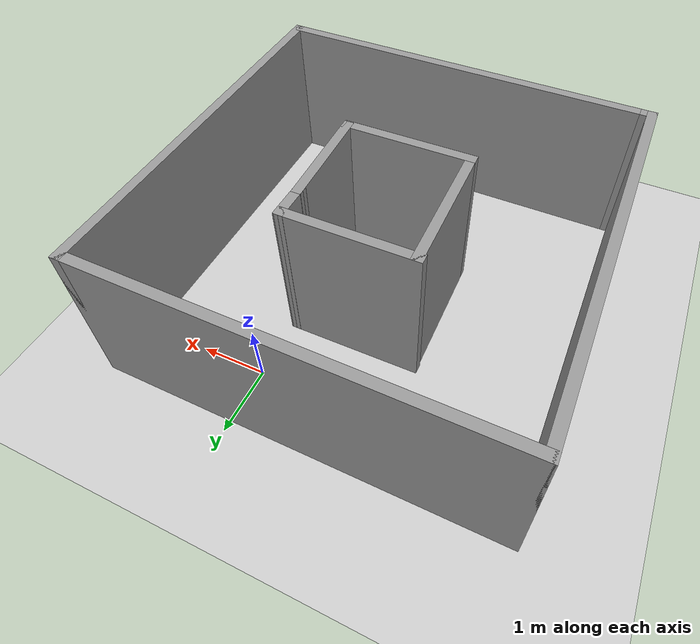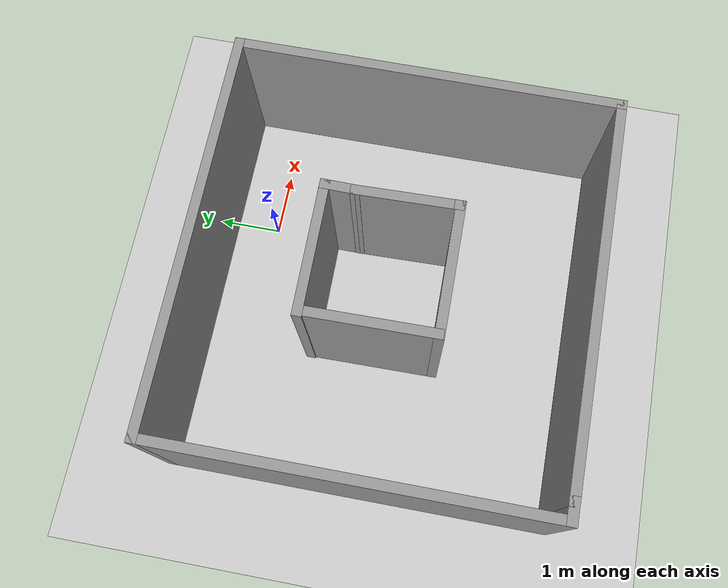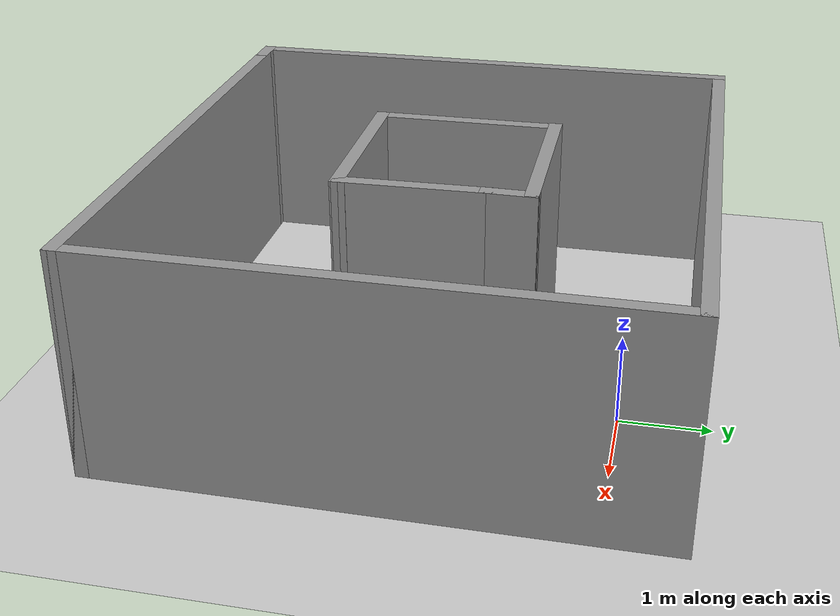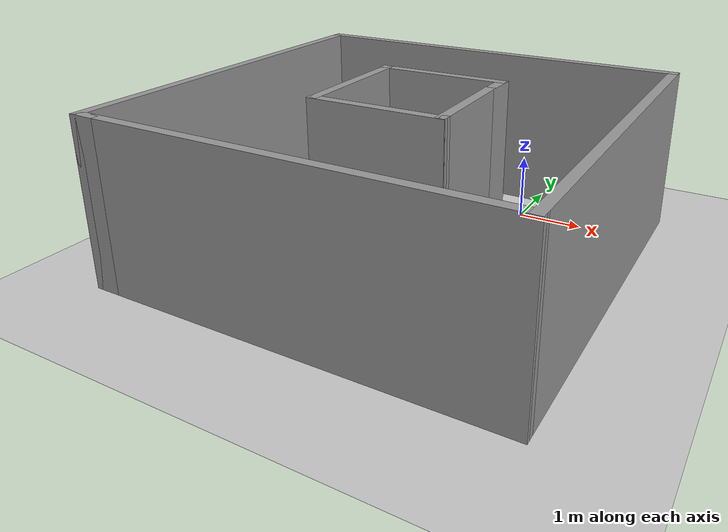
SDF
<sdf version="1.6">
 <world name="default">
  <light name="sun" type="directional">
   <pose>0 0 10 0 -0 0</pose>
   <diffuse>0.8 0.8 0.8 1</diffuse>
   <specular>0.2 0.2 0.2 1</specular>
   <attenuation>
    <range>1000</range>
    <constant>0.9</constant>
    <linear>0.01</linear>
    <quadratic>0.001</quadratic>
   </attenuation>
   <direction>-0.5 0.1 -0.9</direction>
  </light>
  <model name="ground_plane">
   <static>1</static>
   <link name="link">
    <collision name="collision">
     <geometry><plane><normal>0 0 1</normal><size>100 100</size></plane></geometry>
     <surface>
      <contact><collide_bitmask>65535</collide_bitmask></contact>
      <friction><ode><mu>100</mu><mu2>50</mu2></ode></friction>
     </surface>
    </collision>
    <visual name="visual">
     <cast_shadows>0</cast_shadows>
     <geometry><plane><normal>0 0 1</normal><size>100 100</size></plane></geometry>
     <material>
      <script><uri>file://media/materials/scripts/gazebo.material</uri><name>Gazebo/Grey</name></script>
     </material>
    </visual>
   </link>
  </model>
  <gravity>0 0 -9.8</gravity>
  <magnetic_field>6e-06 2.3e-05 -4.2e-05</magnetic_field>
  <atmosphere type="adiabatic"/>
  <physics name="default_physics" default="0" type="ode">
   <max_step_size>0.001</max_step_size>
   <real_time_factor>1</real_time_factor>
   <real_time_update_rate>1000</real_time_update_rate>
  </physics>
  <scene><ambient>0.4 0.4 0.4 1</ambient><background>0.7 0.7 0.7 1</background><shadows>1</shadows></scene>
  <audio><device>default</device></audio>
  <spherical_coordinates>
   <surface_model>EARTH_WGS84</surface_model>
   <latitude_deg>0</latitude_deg>
   <longitude_deg>0</longitude_deg>
   <elevation>0</elevation>
   <heading_deg>0</heading_deg>
  </spherical_coordinates>
  <model name="square">
   <pose>-1.03928 -2.15771 0 0 -0 0</pose>
   <link name="Wall_10">
    <collision name="Wall_10_Collision">
     <geometry><box><size>0.604803 0.15 2.5</size></box></geometry>
     <pose>0 0 1.25 0 -0 0</pose>
    </collision>
    <visual name="Wall_10_Visual">
     <pose>0 0 1.25 0 -0 0</pose>
     <geometry><box><size>0.604803 0.15 2.5</size></box></geometry>
     <material>
      <script><uri>file://media/materials/scripts/gazebo.material</uri><name>Gazebo/Grey</name></script>
      <ambient>1 1 1 1</ambient>
     </material>
     <meta><layer>0</layer></meta>
    </visual>
    <pose>0.980832 0.938348 0 0 -0 -1.58727</pose>
   </link>
   <link name="Wall_11">
    <collision name="Wall_11_Collision">
     <geometry><box><size>1.66809 0.15 2.5</size></box></geometry>
     <pose>0 0 1.25 0 -0 0</pose>
    </collision>
    <visual name="Wall_11_Visual">
     <pose>0 0 1.25 0 -0 0</pose>
     <geometry><box><size>1.66809 0.15 2.5</size></box></geometry>
     <material>
      <script><uri>file://media/materials/scripts/gazebo.material</uri><name>Gazebo/Grey</name></script>
      <ambient>1 1 1 1</ambient>
     </material>
     <meta><layer>0</layer></meta>
    </visual>
    <pose>0.994577 -0.047867 0 0 -0 -1.54775</pose>
   </link>
   <link name="Wall_12">
    <collision name="Wall_12_Collision">
     <geometry><box><size>0.15 0.15 2.5</size></box></geometry>
     <pose>0 0 1.25 0 -0 0</pose>
    </collision>
    <visual name="Wall_12_Visual">
     <pose>0 0 1.25 0 -0 0</pose>
     <geometry><box><size>0.15 0.15 2.5</size></box></geometry>
     <material>
      <script><uri>file://media/materials/scripts/gazebo.material</uri><name>Gazebo/Grey</name></script>
      <ambient>1 1 1 1</ambient>
     </material>
     <meta><layer>0</layer></meta>
    </visual>
    <pose>1.01207 -0.806712 0 0 -0 0</pose>
   </link>
   <link name="Wall_13">
    <collision name="Wall_13_Collision">
     <geometry><box><size>2.08004 0.15 2.5</size></box></geometry>
     <pose>0 0 1.25 0 -0 0</pose>
    </collision>
    <visual name="Wall_13_Visual">
     <pose>0 0 1.25 0 -0 0</pose>
     <geometry><box><size>2.08004 0.15 2.5</size></box></geometry>
     <material>
      <script><uri>file://media/materials/scripts/gazebo.material</uri><name>Gazebo/Grey</name></script>
      <ambient>1 1 1 1</ambient>
     </material>
     <meta><layer>0</layer></meta>
    </visual>
    <pose>0.047087 -0.832947 0 0 -0 -3.13253</pose>
   </link>
   <link name="Wall_15">
    <collision name="Wall_15_Collision">
     <geometry><box><size>6.25 0.15 2.5</size></box></geometry>
     <pose>0 0 1.25 0 -0 0</pose>
    </collision>
    <visual name="Wall_15_Visual">
     <pose>0 0 1.25 0 -0 0</pose>
     <geometry><box><size>6.25 0.15 2.5</size></box></geometry>
     <material>
      <script><uri>file://media/materials/scripts/gazebo.material</uri><name>Gazebo/Grey</name></script>
      <ambient>1 1 1 1</ambient>
     </material>
     <meta><layer>0</layer></meta>
    </visual>
    <pose>0 2.925 0 0 -0 0</pose>
   </link>
   <link name="Wall_16">
    <collision name="Wall_16_Collision">
     <geometry><box><size>0.15 0.15 2.5</size></box></geometry>
     <pose>0 0 1.25 0 -0 0</pose>
    </collision>
    <visual name="Wall_16_Visual">
     <pose>0 0 1.25 0 -0 0</pose>
     <geometry><box><size>0.15 0.15 2.5</size></box></geometry>
     <material>
      <script><uri>file://media/materials/scripts/gazebo.material</uri><name>Gazebo/Grey</name></script>
      <ambient>1 1 1 1</ambient>
     </material>
     <meta><layer>0</layer></meta>
    </visual>
    <pose>3.05 2.925 0 0 -0 0</pose>
   </link>
   <link name="Wall_17">
    <collision name="Wall_17_Collision">
     <geometry><box><size>6 0.15 2.5</size></box></geometry>
     <pose>0 0 1.25 0 -0 0</pose>
    </collision>
    <visual name="Wall_17_Visual">
     <pose>0 0 1.25 0 -0 0</pose>
     <geometry><box><size>6 0.15 2.5</size></box></geometry>
     <material>
      <script><uri>file://media/materials/scripts/gazebo.material</uri><name>Gazebo/Grey</name></script>
      <ambient>1 1 1 1</ambient>
     </material>
     <meta><layer>0</layer></meta>
    </visual>
    <pose>3.05 0 0 0 -0 -1.5708</pose>
   </link>
   <link name="Wall_18">
    <collision name="Wall_18_Collision">
     <geometry><box><size>0.15 0.15 2.5</size></box></geometry>
     <pose>0 0 1.25 0 -0 0</pose>
    </collision>
    <visual name="Wall_18_Visual">
     <pose>0 0 1.25 0 -0 0</pose>
     <geometry><box><size>0.15 0.15 2.5</size></box></geometry>
     <material>
      <script><uri>file://media/materials/scripts/gazebo.material</uri><name>Gazebo/Grey</name></script>
      <ambient>1 1 1 1</ambient>
     </material>
     <meta><layer>0</layer></meta>
    </visual>
    <pose>3.05 -2.925 0 0 -0 0</pose>
   </link>
   <link name="Wall_19">
    <collision name="Wall_19_Collision">
     <geometry><box><size>6 0.15 2.5</size></box></geometry>
     <pose>0 0 1.25 0 -0 0</pose>
    </collision>
    <visual name="Wall_19_Visual">
     <pose>0 0 1.25 0 -0 0</pose>
     <geometry><box><size>6 0.15 2.5</size></box></geometry>
     <material>
      <script><uri>file://media/materials/scripts/gazebo.material</uri><name>Gazebo/Grey</name></script>
      <ambient>1 1 1 1</ambient>
     </material>
     <meta><layer>0</layer></meta>
    </visual>
    <pose>0.125 -2.925 0 0 -0 3.14159</pose>
   </link>
   <link name="Wall_20">
    <collision name="Wall_20_Collision">
     <geometry><box><size>0.4 0.15 2.5</size></box></geometry>
     <pose>0 0 1.25 0 -0 0</pose>
    </collision>
    <visual name="Wall_20_Visual">
     <pose>0 0 1.25 0 -0 0</pose>
     <geometry><box><size>0.4 0.15 2.5</size></box></geometry>
     <material>
      <script><uri>file://media/materials/scripts/gazebo.material</uri><name>Gazebo/Grey</name></script>
      <ambient>1 1 1 1</ambient>
     </material>
     <meta><layer>0</layer></meta>
    </visual>
    <pose>-2.925 -2.925 0 0 -0 3.14159</pose>
   </link>
   <link name="Wall_5">
    <collision name="Wall_5_Collision">
     <geometry><box><size>6 0.15 2.5</size></box></geometry>
     <pose>0 0 1.25 0 -0 0</pose>
    </collision>
    <visual name="Wall_5_Visual">
     <pose>0 0 1.25 0 -0 0</pose>
     <geometry><box><size>6 0.15 2.5</size></box></geometry>
     <material>
      <script><uri>file://media/materials/scripts/gazebo.material</uri><name>Gazebo/Grey</name></script>
      <ambient>1 1 1 1</ambient>
     </material>
     <meta><layer>0</layer></meta>
    </visual>
    <pose>-3.05 0 0 0 -0 -1.5708</pose>
   </link>
   <link name="Wall_7">
    <collision name="Wall_7_Collision">
     <geometry><box><size>2.12251 0.15 2.5</size></box></geometry>
     <pose>0 0 1.25 0 -0 0</pose>
    </collision>
    <visual name="Wall_7_Visual">
     <pose>0 0 1.25 0 -0 0</pose>
     <geometry><box><size>2.12251 0.15 2.5</size></box></geometry>
     <material>
      <script><uri>file://media/materials/scripts/gazebo.material</uri><name>Gazebo/Grey</name></script>
      <ambient>1 1 1 1</ambient>
     </material>
     <meta><layer>0</layer></meta>
    </visual>
    <pose>-0.926638 0.162013 0 0 -0 -1.56193</pose>
   </link>
   <link name="Wall_9">
    <collision name="Wall_9_Collision">
     <geometry><box><size>2.07004 0.15 2.5</size></box></geometry>
     <pose>0 0 1.25 0 -0 0</pose>
    </collision>
    <visual name="Wall_9_Visual">
     <pose>0 0 1.25 0 -0 0</pose>
     <geometry><box><size>2.07004 0.15 2.5</size></box></geometry>
     <material>
      <script><uri>file://media/materials/scripts/gazebo.material</uri><name>Gazebo/Grey</name></script>
      <ambient>1 1 1 1</ambient>
     </material>
     <meta><layer>0</layer></meta>
    </visual>
    <pose>0.007107 1.15697 0 0 -0 0.009109</pose>
   </link>
   <static>1</static>
  </model>
 </world>
</sdf>
